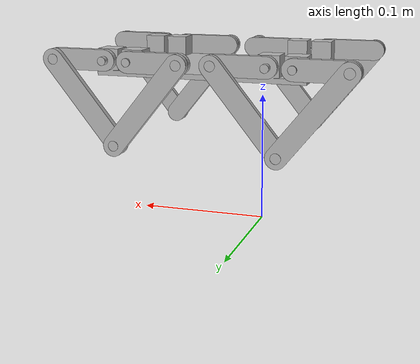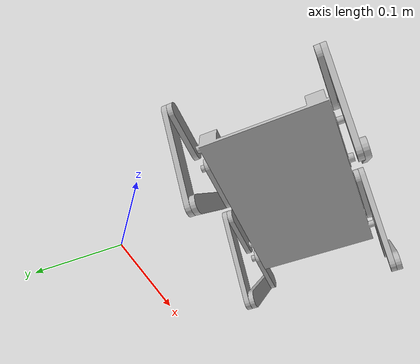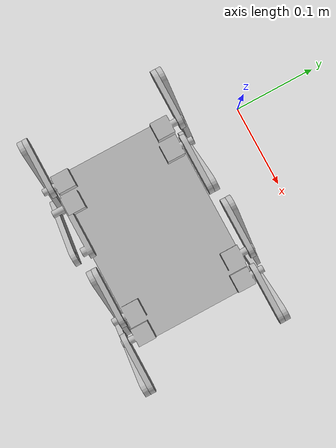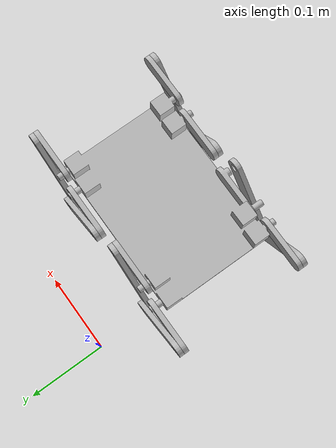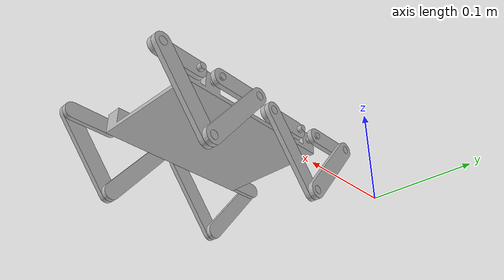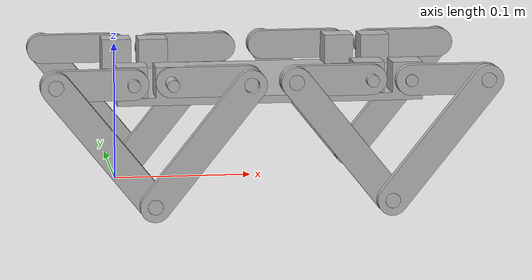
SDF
<sdf version='1.6'>
  <model name='minitaur'>
    <link name='base_link'>
      <pose frame=''>0 0 0 0 -0 0</pose>
      <inertial>
        <pose frame=''>0.083033 -0.15433 0.10624 0 -0 0</pose>
        <mass>0.71915</mass>
        <inertia>
          <ixx>0.0023612</ixx>
          <ixy>0</ixy>
          <ixz>6.8894e-06</ixz>
          <iyy>0.0062972</iyy>
          <iyz>0</iyz>
          <izz>0.0040109</izz>
        </inertia>
      </inertial>
      <collision name='base_link_collision'>
        <pose frame=''>0 0 0 0 -0 0</pose>
        <geometry>
          <mesh>
            <scale>1 1 1</scale>
            <uri>model://minitaur/meshes/base_link.STL</uri>
          </mesh>
        </geometry>
      </collision>
      <visual name='base_link_visual'>
        <pose frame=''>0 0 0 0 -0 0</pose>
        <geometry>
          <mesh>
            <scale>1 1 1</scale>
            <uri>model://minitaur/meshes/base_link.STL</uri>
          </mesh>
        </geometry>
      </visual>
    </link>
    <link name='leg1a1'>
      <pose frame=''>0.17303 -0.071332 0.10916 -1.5708 0 0</pose>
      <inertial>
        <pose frame=''>0.027399 0 -0.008649 0 -0 0</pose>
        <mass>0.0096655</mass>
        <inertia>
          <ixx>3.47e-07</ixx>
          <ixy>0</ixy>
          <ixz>7.67e-08</ixz>
          <iyy>3.57e-06</iyy>
          <iyz>0</iyz>
          <izz>3.82e-06</izz>
        </inertia>
      </inertial>
      <collision name='leg1a1_collision'>
        <pose frame=''>0 0 0 0 -0 0</pose>
        <geometry>
          <mesh>
            <scale>1 1 1</scale>
            <uri>model://minitaur/meshes/leg1a1.STL</uri>
          </mesh>
        </geometry>
      </collision>
      <visual name='leg1a1_visual'>
        <pose frame=''>0 0 0 0 -0 0</pose>
        <geometry>
          <mesh>
            <scale>1 1 1</scale>
            <uri>model://minitaur/meshes/leg1a1.STL</uri>
          </mesh>
        </geometry>
      </visual>
    </link>
    <joint name='leg1j1' type='revolute'>
      <child>leg1a1</child>
      <parent>base_link</parent>
      <axis>
        <xyz>0 -1 4e-06</xyz>
        <limit>
          <lower>-1e+16</lower>
          <upper>1e+16</upper>
        </limit>
        <dynamics>
          <spring_reference>0</spring_reference>
          <spring_stiffness>0</spring_stiffness>
        </dynamics>
        <use_parent_model_frame>1</use_parent_model_frame>
      </axis>
    </joint>
    <link name='leg1a2'>
      <pose frame=''>0.22303 -0.071332 0.10916 -1.5708 -0.89566 5e-06</pose>
      <inertial>
        <pose frame=''>-0.053394 -0 -0.002796 0 -0 0</pose>
        <mass>0.016662</mass>
        <inertia>
          <ixx>6.06e-07</ixx>
          <ixy>0</ixy>
          <ixz>-1.58e-07</ixz>
          <iyy>1.85e-05</iyy>
          <iyz>0</iyz>
          <izz>1.9e-05</izz>
        </inertia>
      </inertial>
      <collision name='leg1a2_collision'>
        <pose frame=''>0 0 0 0 -0 0</pose>
        <geometry>
          <mesh>
            <scale>1 1 1</scale>
            <uri>model://minitaur/meshes/leg1a2.STL</uri>
          </mesh>
        </geometry>
      </collision>
      <visual name='leg1a2_visual'>
        <pose frame=''>0 0 0 0 -0 0</pose>
        <geometry>
          <mesh>
            <scale>1 1 1</scale>
            <uri>model://minitaur/meshes/leg1a2.STL</uri>
          </mesh>
        </geometry>
      </visual>
    </link>
    <joint name='leg1j2' type='revolute'>
      <child>leg1a2</child>
      <parent>leg1a1</parent>
      <axis>
        <xyz>0 -1 4e-06</xyz>
        <limit>
          <lower>-1e+16</lower>
          <upper>1e+16</upper>
        </limit>
        <dynamics>
          <spring_reference>0</spring_reference>
          <spring_stiffness>0</spring_stiffness>
        </dynamics>
        <use_parent_model_frame>1</use_parent_model_frame>
      </axis>
    </joint>
    <link name='leg1a3'>
      <pose frame=''>0.14803 -0.065332 0.10916 1.5708 -0 -3.14159</pose>
      <inertial>
        <pose frame=''>0.027399 -0 -0.008649 0 -0 0</pose>
        <mass>0.0096655</mass>
        <inertia>
          <ixx>3.47e-07</ixx>
          <ixy>0</ixy>
          <ixz>7.67e-08</ixz>
          <iyy>3.57e-06</iyy>
          <iyz>0</iyz>
          <izz>3.82e-06</izz>
        </inertia>
      </inertial>
      <collision name='leg1a3_collision'>
        <pose frame=''>0 0 0 0 -0 0</pose>
        <geometry>
          <mesh>
            <scale>1 1 1</scale>
            <uri>model://minitaur/meshes/leg1a3.STL</uri>
          </mesh>
        </geometry>
      </collision>
      <visual name='leg1a3_visual'>
        <pose frame=''>0 0 0 0 -0 0</pose>
        <geometry>
          <mesh>
            <scale>1 1 1</scale>
            <uri>model://minitaur/meshes/leg1a3.STL</uri>
          </mesh>
        </geometry>
      </visual>
    </link>
    <joint name='leg1j3' type='revolute'>
      <child>leg1a3</child>
      <parent>base_link</parent>
      <axis>
        <xyz>7e-06 -1 4e-06</xyz>
        <limit>
          <lower>-1e+16</lower>
          <upper>1e+16</upper>
        </limit>
        <dynamics>
          <spring_reference>0</spring_reference>
          <spring_stiffness>0</spring_stiffness>
        </dynamics>
        <use_parent_model_frame>1</use_parent_model_frame>
      </axis>
    </joint>
    <link name='leg1a4'>
      <pose frame=''>0.09803 -0.065332 0.10916 1.5708 0.895693 3e-06</pose>
      <inertial>
        <pose frame=''>0.05 0 0.003 0 -0 0</pose>
        <mass>0.015531</mass>
        <inertia>
          <ixx>5.76e-07</ixx>
          <ixy>0</ixy>
          <ixz>0</ixz>
          <iyy>1.59e-05</iyy>
          <iyz>0</iyz>
          <izz>1.64e-05</izz>
        </inertia>
      </inertial>
      <collision name='leg1a4_collision'>
        <pose frame=''>0 0 0 0 -0 0</pose>
        <geometry>
          <mesh>
            <scale>1 1 1</scale>
            <uri>model://minitaur/meshes/leg1a4.STL</uri>
          </mesh>
        </geometry>
      </collision>
      <visual name='leg1a4_visual'>
        <pose frame=''>0 0 0 0 -0 0</pose>
        <geometry>
          <mesh>
            <scale>1 1 1</scale>
            <uri>model://minitaur/meshes/leg1a4.STL</uri>
          </mesh>
        </geometry>
      </visual>
    </link>
    <joint name='leg1j4' type='revolute'>
      <child>leg1a4</child>
      <parent>leg1a3</parent>
      <axis>
        <xyz>2e-06 -1 -1e-06</xyz>
        <limit>
          <lower>-1e+16</lower>
          <upper>1e+16</upper>
        </limit>
        <dynamics>
          <spring_reference>0</spring_reference>
          <spring_stiffness>0</spring_stiffness>
        </dynamics>
        <use_parent_model_frame>1</use_parent_model_frame>
      </axis>
    </joint>
    <link name='leg2a1'>
      <pose frame=''>0.018033 -0.071332 0.10916 -1.5708 0 0</pose>
      <inertial>
        <pose frame=''>0.027399 -0 -0.008649 0 -0 0</pose>
        <mass>0.0096655</mass>
        <inertia>
          <ixx>3.47e-07</ixx>
          <ixy>0</ixy>
          <ixz>7.67e-08</ixz>
          <iyy>3.57e-06</iyy>
          <iyz>0</iyz>
          <izz>3.82e-06</izz>
        </inertia>
      </inertial>
      <collision name='leg2a1_collision'>
        <pose frame=''>0 0 0 0 -0 0</pose>
        <geometry>
          <mesh>
            <scale>1 1 1</scale>
            <uri>model://minitaur/meshes/leg2a1.STL</uri>
          </mesh>
        </geometry>
      </collision>
      <visual name='leg2a1_visual'>
        <pose frame=''>0 0 0 0 -0 0</pose>
        <geometry>
          <mesh>
            <scale>1 1 1</scale>
            <uri>model://minitaur/meshes/leg2a1.STL</uri>
          </mesh>
        </geometry>
      </visual>
    </link>
    <joint name='leg2j1' type='revolute'>
      <child>leg2a1</child>
      <parent>base_link</parent>
      <axis>
        <xyz>0 -1 4e-06</xyz>
        <limit>
          <lower>-1e+16</lower>
          <upper>1e+16</upper>
        </limit>
        <dynamics>
          <spring_reference>0</spring_reference>
          <spring_stiffness>0</spring_stiffness>
        </dynamics>
        <use_parent_model_frame>1</use_parent_model_frame>
      </axis>
    </joint>
    <link name='leg2a2'>
      <pose frame=''>0.068033 -0.071332 0.10916 -1.5708 -0.89566 5e-06</pose>
      <inertial>
        <pose frame=''>-0.053394 -0 -0.002796 0 -0 0</pose>
        <mass>0.016662</mass>
        <inertia>
          <ixx>6.06e-07</ixx>
          <ixy>0</ixy>
          <ixz>-1.58e-07</ixz>
          <iyy>1.85e-05</iyy>
          <iyz>0</iyz>
          <izz>1.9e-05</izz>
        </inertia>
      </inertial>
      <collision name='leg2a2_collision'>
        <pose frame=''>0 0 0 0 -0 0</pose>
        <geometry>
          <mesh>
            <scale>1 1 1</scale>
            <uri>model://minitaur/meshes/leg2a2.STL</uri>
          </mesh>
        </geometry>
      </collision>
      <visual name='leg2a2_visual'>
        <pose frame=''>0 0 0 0 -0 0</pose>
        <geometry>
          <mesh>
            <scale>1 1 1</scale>
            <uri>model://minitaur/meshes/leg2a2.STL</uri>
          </mesh>
        </geometry>
      </visual>
    </link>
    <joint name='leg2j2' type='revolute'>
      <child>leg2a2</child>
      <parent>leg2a1</parent>
      <axis>
        <xyz>0 -1 4e-06</xyz>
        <limit>
          <lower>-1e+16</lower>
          <upper>1e+16</upper>
        </limit>
        <dynamics>
          <spring_reference>0</spring_reference>
          <spring_stiffness>0</spring_stiffness>
        </dynamics>
        <use_parent_model_frame>1</use_parent_model_frame>
      </axis>
    </joint>
    <link name='leg2a3'>
      <pose frame=''>-0.006967 -0.065332 0.10916 1.5708 0 3.14159</pose>
      <inertial>
        <pose frame=''>0.027399 0 -0.008649 0 -0 0</pose>
        <mass>0.0096655</mass>
        <inertia>
          <ixx>3.47e-07</ixx>
          <ixy>0</ixy>
          <ixz>7.67e-08</ixz>
          <iyy>3.57e-06</iyy>
          <iyz>0</iyz>
          <izz>3.82e-06</izz>
        </inertia>
      </inertial>
      <collision name='leg2a3_collision'>
        <pose frame=''>0 0 0 0 -0 0</pose>
        <geometry>
          <mesh>
            <scale>1 1 1</scale>
            <uri>model://minitaur/meshes/leg2a3.STL</uri>
          </mesh>
        </geometry>
      </collision>
      <visual name='leg2a3_visual'>
        <pose frame=''>0 0 0 0 -0 0</pose>
        <geometry>
          <mesh>
            <scale>1 1 1</scale>
            <uri>model://minitaur/meshes/leg2a3.STL</uri>
          </mesh>
        </geometry>
      </visual>
    </link>
    <joint name='leg2j3' type='revolute'>
      <child>leg2a3</child>
      <parent>base_link</parent>
      <axis>
        <xyz>-7e-06 -1 4e-06</xyz>
        <limit>
          <lower>-1e+16</lower>
          <upper>1e+16</upper>
        </limit>
        <dynamics>
          <spring_reference>0</spring_reference>
          <spring_stiffness>0</spring_stiffness>
        </dynamics>
        <use_parent_model_frame>1</use_parent_model_frame>
      </axis>
    </joint>
    <link name='leg2a4'>
      <pose frame=''>-0.056967 -0.065332 0.10916 -1.57078 -0.89566 3.14158</pose>
      <inertial>
        <pose frame=''>-0.05 -0 0.003 0 -0 0</pose>
        <mass>0.015531</mass>
        <inertia>
          <ixx>5.76e-07</ixx>
          <ixy>0</ixy>
          <ixz>0</ixz>
          <iyy>1.59e-05</iyy>
          <iyz>0</iyz>
          <izz>1.64e-05</izz>
        </inertia>
      </inertial>
      <collision name='leg2a4_collision'>
        <pose frame=''>0 0 0 0 -0 0</pose>
        <geometry>
          <mesh>
            <scale>1 1 1</scale>
            <uri>model://minitaur/meshes/leg2a4.STL</uri>
          </mesh>
        </geometry>
      </collision>
      <visual name='leg2a4_visual'>
        <pose frame=''>0 0 0 0 -0 0</pose>
        <geometry>
          <mesh>
            <scale>1 1 1</scale>
            <uri>model://minitaur/meshes/leg2a4.STL</uri>
          </mesh>
        </geometry>
      </visual>
    </link>
    <joint name='leg2j4' type='revolute'>
      <child>leg2a4</child>
      <parent>leg2a3</parent>
      <axis>
        <xyz>-2e-06 -1 8e-06</xyz>
        <limit>
          <lower>-1e+16</lower>
          <upper>1e+16</upper>
        </limit>
        <dynamics>
          <spring_reference>0</spring_reference>
          <spring_stiffness>0</spring_stiffness>
        </dynamics>
        <use_parent_model_frame>1</use_parent_model_frame>
      </axis>
    </joint>
    <link name='leg3a1'>
      <pose frame=''>0.14803 -0.22533 0.10916 -1.5708 0 -3.14159</pose>
      <inertial>
        <pose frame=''>0.027399 0 0.003351 0 -0 0</pose>
        <mass>0.0096655</mass>
        <inertia>
          <ixx>3.47e-07</ixx>
          <ixy>0</ixy>
          <ixz>7.67e-08</ixz>
          <iyy>3.57e-06</iyy>
          <iyz>0</iyz>
          <izz>3.82e-06</izz>
        </inertia>
      </inertial>
      <collision name='leg3a1_collision'>
        <pose frame=''>0 0 0 0 -0 0</pose>
        <geometry>
          <mesh>
            <scale>1 1 1</scale>
            <uri>model://minitaur/meshes/leg3a1.STL</uri>
          </mesh>
        </geometry>
      </collision>
      <visual name='leg3a1_visual'>
        <pose frame=''>0 0 0 0 -0 0</pose>
        <geometry>
          <mesh>
            <scale>1 1 1</scale>
            <uri>model://minitaur/meshes/leg3a1.STL</uri>
          </mesh>
        </geometry>
      </visual>
    </link>
    <joint name='leg3j1' type='revolute'>
      <child>leg3a1</child>
      <parent>base_link</parent>
      <axis>
        <xyz>7e-06 -1 -4e-06</xyz>
        <limit>
          <lower>-1e+16</lower>
          <upper>1e+16</upper>
        </limit>
        <dynamics>
          <spring_reference>0</spring_reference>
          <spring_stiffness>0</spring_stiffness>
        </dynamics>
        <use_parent_model_frame>1</use_parent_model_frame>
      </axis>
    </joint>
    <link name='leg3a2'>
      <pose frame=''>0.09803 -0.23133 0.10916 -1.5708 -0.89566 -3.14158</pose>
      <inertial>
        <pose frame=''>-0.053394 0 0.003204 0 -0 0</pose>
        <mass>0.016662</mass>
        <inertia>
          <ixx>6.06e-07</ixx>
          <ixy>0</ixy>
          <ixz>-1.58e-07</ixz>
          <iyy>1.85e-05</iyy>
          <iyz>0</iyz>
          <izz>1.9e-05</izz>
        </inertia>
      </inertial>
      <collision name='leg3a2_collision'>
        <pose frame=''>0 0 0 0 -0 0</pose>
        <geometry>
          <mesh>
            <scale>1 1 1</scale>
            <uri>model://minitaur/meshes/leg3a2.STL</uri>
          </mesh>
        </geometry>
      </collision>
      <visual name='leg3a2_visual'>
        <pose frame=''>0 0 0 0 -0 0</pose>
        <geometry>
          <mesh>
            <scale>1 1 1</scale>
            <uri>model://minitaur/meshes/leg3a2.STL</uri>
          </mesh>
        </geometry>
      </visual>
    </link>
    <joint name='leg3j2' type='revolute'>
      <child>leg3a2</child>
      <parent>leg3a1</parent>
      <axis>
        <xyz>7e-06 -1 -4e-06</xyz>
        <limit>
          <lower>-1e+16</lower>
          <upper>1e+16</upper>
        </limit>
        <dynamics>
          <spring_reference>0</spring_reference>
          <spring_stiffness>0</spring_stiffness>
        </dynamics>
        <use_parent_model_frame>1</use_parent_model_frame>
      </axis>
    </joint>
    <link name='leg3a3'>
      <pose frame=''>0.17303 -0.23133 0.10916 1.5708 -0 0</pose>
      <inertial>
        <pose frame=''>0.027399 0 0.003351 0 -0 0</pose>
        <mass>0.0096655</mass>
        <inertia>
          <ixx>3.47e-07</ixx>
          <ixy>0</ixy>
          <ixz>7.67e-08</ixz>
          <iyy>3.57e-06</iyy>
          <iyz>0</iyz>
          <izz>3.82e-06</izz>
        </inertia>
      </inertial>
      <collision name='leg3a3_collision'>
        <pose frame=''>0 0 0 0 -0 0</pose>
        <geometry>
          <mesh>
            <scale>1 1 1</scale>
            <uri>model://minitaur/meshes/leg3a3.STL</uri>
          </mesh>
        </geometry>
      </collision>
      <visual name='leg3a3_visual'>
        <pose frame=''>0 0 0 0 -0 0</pose>
        <geometry>
          <mesh>
            <scale>1 1 1</scale>
            <uri>model://minitaur/meshes/leg3a3.STL</uri>
          </mesh>
        </geometry>
      </visual>
    </link>
    <joint name='leg3j3' type='revolute'>
      <child>leg3a3</child>
      <parent>base_link</parent>
      <axis>
        <xyz>0 -1 -4e-06</xyz>
        <limit>
          <lower>-1e+16</lower>
          <upper>1e+16</upper>
        </limit>
        <dynamics>
          <spring_reference>0</spring_reference>
          <spring_stiffness>0</spring_stiffness>
        </dynamics>
        <use_parent_model_frame>1</use_parent_model_frame>
      </axis>
    </joint>
    <link name='leg3a4'>
      <pose frame=''>0.22303 -0.23733 0.10916 -1.5708 0.895693 3.14159</pose>
      <inertial>
        <pose frame=''>0.05 0 0.003 0 -0 0</pose>
        <mass>0.015531</mass>
        <inertia>
          <ixx>5.76e-07</ixx>
          <ixy>0</ixy>
          <ixz>0</ixz>
          <iyy>1.59e-05</iyy>
          <iyz>0</iyz>
          <izz>1.64e-05</izz>
        </inertia>
      </inertial>
      <collision name='leg3a4_collision'>
        <pose frame=''>0 0 0 0 -0 0</pose>
        <geometry>
          <mesh>
            <scale>1 1 1</scale>
            <uri>model://minitaur/meshes/leg3a4.STL</uri>
          </mesh>
        </geometry>
      </collision>
      <visual name='leg3a4_visual'>
        <pose frame=''>0 0 0 0 -0 0</pose>
        <geometry>
          <mesh>
            <scale>1 1 1</scale>
            <uri>model://minitaur/meshes/leg3a4.STL</uri>
          </mesh>
        </geometry>
      </visual>
    </link>
    <joint name='leg3j4' type='revolute'>
      <child>leg3a4</child>
      <parent>leg3a3</parent>
      <axis>
        <xyz>0 -1 -4e-06</xyz>
        <limit>
          <lower>-1e+16</lower>
          <upper>1e+16</upper>
        </limit>
        <dynamics>
          <spring_reference>0</spring_reference>
          <spring_stiffness>0</spring_stiffness>
        </dynamics>
        <use_parent_model_frame>1</use_parent_model_frame>
      </axis>
    </joint>
    <link name='leg4a1'>
      <pose frame=''>-0.006967 -0.22533 0.10916 -1.5708 -0 -3.14159</pose>
      <inertial>
        <pose frame=''>0.027399 0 0.003351 0 -0 0</pose>
        <mass>0.0096655</mass>
        <inertia>
          <ixx>3.47e-07</ixx>
          <ixy>0</ixy>
          <ixz>7.67e-08</ixz>
          <iyy>3.57e-06</iyy>
          <iyz>0</iyz>
          <izz>3.82e-06</izz>
        </inertia>
      </inertial>
      <collision name='leg4a1_collision'>
        <pose frame=''>0 0 0 0 -0 0</pose>
        <geometry>
          <mesh>
            <scale>1 1 1</scale>
            <uri>model://minitaur/meshes/leg4a1.STL</uri>
          </mesh>
        </geometry>
      </collision>
      <visual name='leg4a1_visual'>
        <pose frame=''>0 0 0 0 -0 0</pose>
        <geometry>
          <mesh>
            <scale>1 1 1</scale>
            <uri>model://minitaur/meshes/leg4a1.STL</uri>
          </mesh>
        </geometry>
      </visual>
    </link>
    <joint name='leg4j1' type='revolute'>
      <child>leg4a1</child>
      <parent>base_link</parent>
      <axis>
        <xyz>7e-06 -1 -4e-06</xyz>
        <limit>
          <lower>-1e+16</lower>
          <upper>1e+16</upper>
        </limit>
        <dynamics>
          <spring_reference>0</spring_reference>
          <spring_stiffness>0</spring_stiffness>
        </dynamics>
        <use_parent_model_frame>1</use_parent_model_frame>
      </axis>
    </joint>
    <link name='leg4a2'>
      <pose frame=''>-0.056967 -0.23133 0.10916 -1.5708 -0.89566 -3.14158</pose>
      <inertial>
        <pose frame=''>-0.053394 -0 0.003204 0 -0 0</pose>
        <mass>0.016662</mass>
        <inertia>
          <ixx>6.06e-07</ixx>
          <ixy>0</ixy>
          <ixz>-1.58e-07</ixz>
          <iyy>1.85e-05</iyy>
          <iyz>0</iyz>
          <izz>1.9e-05</izz>
        </inertia>
      </inertial>
      <collision name='leg4a2_collision'>
        <pose frame=''>0 0 0 0 -0 0</pose>
        <geometry>
          <mesh>
            <scale>1 1 1</scale>
            <uri>model://minitaur/meshes/leg4a2.STL</uri>
          </mesh>
        </geometry>
      </collision>
      <visual name='leg4a2_visual'>
        <pose frame=''>0 0 0 0 -0 0</pose>
        <geometry>
          <mesh>
            <scale>1 1 1</scale>
            <uri>model://minitaur/meshes/leg4a2.STL</uri>
          </mesh>
        </geometry>
      </visual>
    </link>
    <joint name='leg4j2' type='revolute'>
      <child>leg4a2</child>
      <parent>leg4a1</parent>
      <axis>
        <xyz>7e-06 -1 -4e-06</xyz>
        <limit>
          <lower>-1e+16</lower>
          <upper>1e+16</upper>
        </limit>
        <dynamics>
          <spring_reference>0</spring_reference>
          <spring_stiffness>0</spring_stiffness>
        </dynamics>
        <use_parent_model_frame>1</use_parent_model_frame>
      </axis>
    </joint>
    <link name='leg4a3'>
      <pose frame=''>0.018033 -0.23133 0.10916 1.5708 -0 0</pose>
      <inertial>
        <pose frame=''>0.027399 0 0.003351 0 -0 0</pose>
        <mass>0.0096655</mass>
        <inertia>
          <ixx>3.47e-07</ixx>
          <ixy>0</ixy>
          <ixz>7.67e-08</ixz>
          <iyy>3.57e-06</iyy>
          <iyz>0</iyz>
          <izz>3.82e-06</izz>
        </inertia>
      </inertial>
      <collision name='leg4a3_collision'>
        <pose frame=''>0 0 0 0 -0 0</pose>
        <geometry>
          <mesh>
            <scale>1 1 1</scale>
            <uri>model://minitaur/meshes/leg4a3.STL</uri>
          </mesh>
        </geometry>
      </collision>
      <visual name='leg4a3_visual'>
        <pose frame=''>0 0 0 0 -0 0</pose>
        <geometry>
          <mesh>
            <scale>1 1 1</scale>
            <uri>model://minitaur/meshes/leg4a3.STL</uri>
          </mesh>
        </geometry>
      </visual>
    </link>
    <joint name='leg4j3' type='revolute'>
      <child>leg4a3</child>
      <parent>base_link</parent>
      <axis>
        <xyz>0 -1 -4e-06</xyz>
        <limit>
          <lower>-1e+16</lower>
          <upper>1e+16</upper>
        </limit>
        <dynamics>
          <spring_reference>0</spring_reference>
          <spring_stiffness>0</spring_stiffness>
        </dynamics>
        <use_parent_model_frame>1</use_parent_model_frame>
      </axis>
    </joint>
    <link name='leg4a4'>
      <pose frame=''>0.068033 -0.23733 0.10916 -1.5708 0.895693 3.14159</pose>
      <inertial>
        <pose frame=''>0.05 0 0.003 0 -0 0</pose>
        <mass>0.015531</mass>
        <inertia>
          <ixx>5.76e-07</ixx>
          <ixy>0</ixy>
          <ixz>0</ixz>
          <iyy>1.59e-05</iyy>
          <iyz>0</iyz>
          <izz>1.64e-05</izz>
        </inertia>
      </inertial>
      <collision name='leg4a4_collision'>
        <pose frame=''>0 0 0 0 -0 0</pose>
        <geometry>
          <mesh>
            <scale>1 1 1</scale>
            <uri>model://minitaur/meshes/leg4a4.STL</uri>
          </mesh>
        </geometry>
      </collision>
      <visual name='leg4a4_visual'>
        <pose frame=''>0 0 0 0 -0 0</pose>
        <geometry>
          <mesh>
            <scale>1 1 1</scale>
            <uri>model://minitaur/meshes/leg4a4.STL</uri>
          </mesh>
        </geometry>
      </visual>
    </link>
    <joint name='leg4j4' type='revolute'>
      <child>leg4a4</child>
      <parent>leg4a3</parent>
      <axis>
        <xyz>0 -1 -4e-06</xyz>
        <limit>
          <lower>-1e+16</lower>
          <upper>1e+16</upper>
        </limit>
        <dynamics>
          <spring_reference>0</spring_reference>
          <spring_stiffness>0</spring_stiffness>
        </dynamics>
        <use_parent_model_frame>1</use_parent_model_frame>
      </axis>
    </joint>
  </model>
</sdf>
